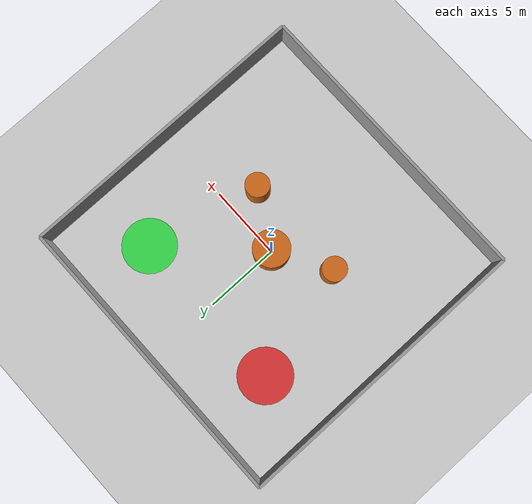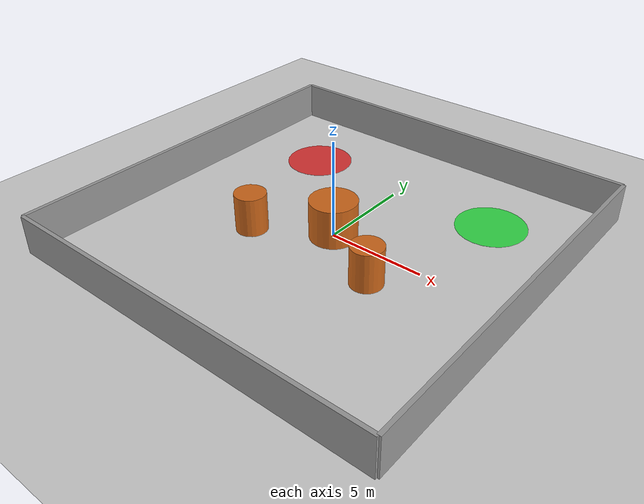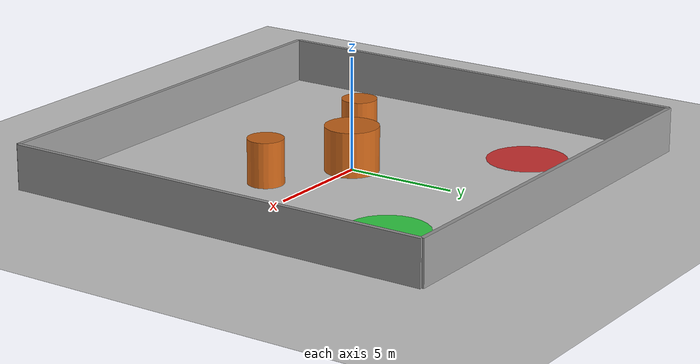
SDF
<?xml version="1.0" ?>
<sdf version="1.8">
  <world name="learning_lab_arena">
    <!-- Modern Gazebo Fortress Systems -->
    <plugin
      filename="ignition-gazebo-physics-system"
      name="ignition::gazebo::systems::Physics">
    </plugin>
    <plugin
      filename="ignition-gazebo-user-commands-system"
      name="ignition::gazebo::systems::UserCommands">
    </plugin>
    <plugin
      filename="ignition-gazebo-scene-broadcaster-system"
      name="ignition::gazebo::systems::SceneBroadcaster">
    </plugin>
    <plugin
      filename="ignition-gazebo-sensors-system"
      name="ignition::gazebo::systems::Sensors">
      <render_engine>ogre2</render_engine>
    </plugin>

    <!-- Scene & Lighting -->
    <scene>
      <ambient>0.4 0.4 0.4 1.0</ambient>
      <background>0.7 0.8 0.9 1.0</background>
      <shadows>true</shadows>
    </scene>

    <light type="directional" name="sun">
      <cast_shadows>true</cast_shadows>
      <pose>0 0 10 0 0 0</pose>
      <diffuse>0.8 0.8 0.8 1</diffuse>
      <specular>0.2 0.2 0.2 1</specular>
      <direction>-0.5 0.1 -0.9</direction>
    </light>

    <!-- Ground Plane -->
    <model name="ground_plane">
      <static>true</static>
      <link name="link">
        <collision name="collision">
          <geometry>
            <plane>
              <normal>0 0 1</normal>
              <size>100 100</size>
            </plane>
          </geometry>
        </collision>
        <visual name="visual">
          <geometry>
            <plane>
              <normal>0 0 1</normal>
              <size>100 100</size>
            </plane>
          </geometry>
          <material>
            <ambient>0.8 0.8 0.8 1</ambient>
            <diffuse>0.8 0.8 0.8 1</diffuse>
            <specular>0.8 0.8 0.8 1</specular>
          </material>
        </visual>
      </link>
    </model>

    <!-- Arena Boundary Walls (20m x 20m) -->
    <!-- North Wall -->
    <model name="wall_north">
      <static>true</static>
      <pose>0 10.0 1.0 0 0 0</pose>
      <link name="link">
        <collision name="col">
          <geometry><box><size>20.0 0.2 2.0</size></box></geometry>
        </collision>
        <visual name="vis">
          <geometry><box><size>20.0 0.2 2.0</size></box></geometry>
          <material>
            <ambient>0.5 0.5 0.5 1.0</ambient>
            <diffuse>0.6 0.6 0.6 1.0</diffuse>
          </material>
        </visual>
      </link>
    </model>

    <!-- South Wall -->
    <model name="wall_south">
      <static>true</static>
      <pose>0 -10.0 1.0 0 0 0</pose>
      <link name="link">
        <collision name="col">
          <geometry><box><size>20.0 0.2 2.0</size></box></geometry>
        </collision>
        <visual name="vis">
          <geometry><box><size>20.0 0.2 2.0</size></box></geometry>
          <material>
            <ambient>0.5 0.5 0.5 1.0</ambient>
            <diffuse>0.6 0.6 0.6 1.0</diffuse>
          </material>
        </visual>
      </link>
    </model>

    <!-- East Wall -->
    <model name="wall_east">
      <static>true</static>
      <pose>10.0 0 1.0 0 0 0</pose>
      <link name="link">
        <collision name="col">
          <geometry><box><size>0.2 20.0 2.0</size></box></geometry>
        </collision>
        <visual name="vis">
          <geometry><box><size>0.2 20.0 2.0</size></box></geometry>
          <material>
            <ambient>0.5 0.5 0.5 1.0</ambient>
            <diffuse>0.6 0.6 0.6 1.0</diffuse>
          </material>
        </visual>
      </link>
    </model>

    <!-- West Wall -->
    <model name="wall_west">
      <static>true</static>
      <pose>-10.0 0 1.0 0 0 0</pose>
      <link name="link">
        <collision name="col">
          <geometry><box><size>0.2 20.0 2.0</size></box></geometry>
        </collision>
        <visual name="vis">
          <geometry><box><size>0.2 20.0 2.0</size></box></geometry>
          <material>
            <ambient>0.5 0.5 0.5 1.0</ambient>
            <diffuse>0.6 0.6 0.6 1.0</diffuse>
          </material>
        </visual>
      </link>
    </model>

    <!-- Central Obstacles Creating Navigable Corridors -->
    <model name="obstacle_center">
      <static>true</static>
      <pose>0 0 1.0 0 0 0</pose>
      <link name="link">
        <collision name="col">
          <geometry><cylinder><radius>1.2</radius><length>2.0</length></cylinder></geometry>
        </collision>
        <visual name="vis">
          <geometry><cylinder><radius>1.2</radius><length>2.0</length></cylinder></geometry>
          <material>
            <ambient>0.8 0.4 0.1 1.0</ambient>
            <diffuse>0.8 0.4 0.1 1.0</diffuse>
          </material>
        </visual>
      </link>
    </model>

    <model name="obstacle_left">
      <static>true</static>
      <pose>-3.5 -2.0 1.0 0 0 0</pose>
      <link name="link">
        <collision name="col">
          <geometry><cylinder><radius>0.8</radius><length>2.0</length></cylinder></geometry>
        </collision>
        <visual name="vis">
          <geometry><cylinder><radius>0.8</radius><length>2.0</length></cylinder></geometry>
          <material>
            <ambient>0.8 0.4 0.1 1.0</ambient>
            <diffuse>0.8 0.4 0.1 1.0</diffuse>
          </material>
        </visual>
      </link>
    </model>

    <model name="obstacle_right">
      <static>true</static>
      <pose>3.5 -2.0 1.0 0 0 0</pose>
      <link name="link">
        <collision name="col">
          <geometry><cylinder><radius>0.8</radius><length>2.0</length></cylinder></geometry>
        </collision>
        <visual name="vis">
          <geometry><cylinder><radius>0.8</radius><length>2.0</length></cylinder></geometry>
          <material>
            <ambient>0.8 0.4 0.1 1.0</ambient>
            <diffuse>0.8 0.4 0.1 1.0</diffuse>
          </material>
        </visual>
      </link>
    </model>

    <!-- Target Reward Zone (Green Sucrose Region) -->
    <model name="reward_zone_sugar">
      <static>true</static>
      <pose>5.5 5.5 0.01 0 0 0</pose>
      <link name="link">
        <visual name="vis">
          <geometry><cylinder><radius>1.8</radius><length>0.02</length></cylinder></geometry>
          <material>
            <ambient>0.1 0.9 0.2 0.8</ambient>
            <diffuse>0.1 0.9 0.2 0.8</diffuse>
          </material>
        </visual>
      </link>
    </model>

    <!-- Hazard Shock Zone (Red Bitter Quinine Region) -->
    <model name="hazard_zone_shock">
      <static>true</static>
      <pose>-5.5 5.5 0.01 0 0 0</pose>
      <link name="link">
        <visual name="vis">
          <geometry><cylinder><radius>1.8</radius><length>0.02</length></cylinder></geometry>
          <material>
            <ambient>0.9 0.1 0.1 0.8</ambient>
            <diffuse>0.9 0.1 0.1 0.8</diffuse>
          </material>
        </visual>
      </link>
    </model>
  </world>
</sdf>
